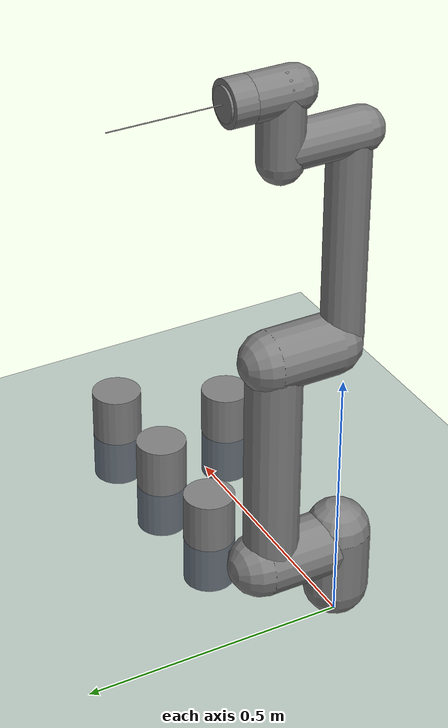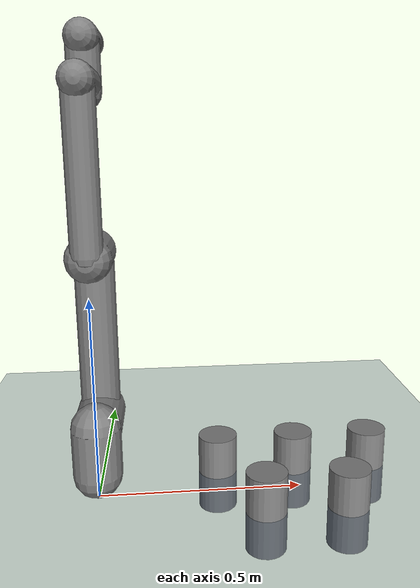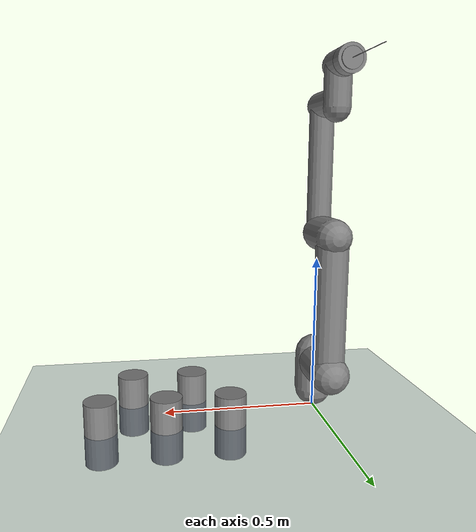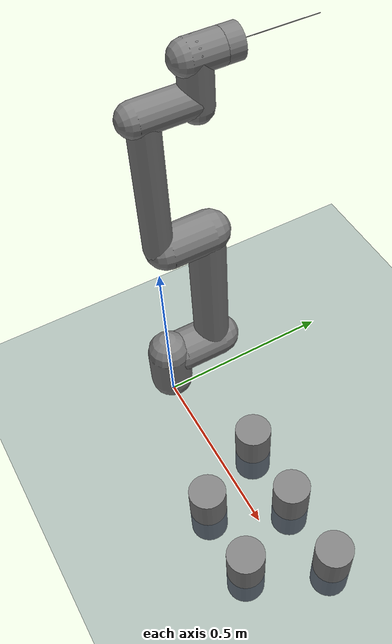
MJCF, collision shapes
<mujoco model="ur5e scene">

  <include file="ur5e.xml"/>

  <statistic center="0.3 0 0.4" extent="0.8"/>

  <visual>
    <headlight diffuse="0.6 0.6 0.6" ambient="0.1 0.1 0.1" specular="0 0 0"/>
  </visual>

  <asset>
    <texture type="skybox" builtin="gradient" rgb1="0.3 0.5 0.7" rgb2="0 0 0" width="512" height="3072"/>
    <texture type="2d" name="groundplane" builtin="checker" mark="edge" rgb1="0.2 0.3 0.4" rgb2="0.1 0.2 0.3"
      markrgb="0.8 0.8 0.8" width="300" height="300"/>
    <material name="groundplane" texture="groundplane" texuniform="true" texrepeat="5 5" reflectance="0.2"/>
  </asset>

  <worldbody>
    <light pos="0 0 1.5" dir="0 0 -1" directional="true"/>
    <geom name="floor" size="1 1 0.05" type="plane" material="groundplane"/>
    <body name="object1" pos="0 0 0">
      <geom type="cylinder" pos="0.3 0.1 0" size="0.05 0.1"/>
      <geom type="cylinder" pos="0.4 -0.1 0" size="0.05 0.1"/>
      <geom type="cylinder" pos="0.5 0.1 0" size="0.05 0.1"/>
      <geom type="cylinder" pos="0.6 -0.1 0" size="0.05 0.1"/>
      <geom type="cylinder" pos="0.7 0.1 0" size="0.05 0.1"/>
    </body>
  </worldbody>

</mujoco>

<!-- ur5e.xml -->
<mujoco model="ur5e">
  <compiler angle="radian" meshdir="assets"/>

  <default>
    <default class="ur5e">
      <material specular="0.5" shininess="0.25"/>
      <joint axis="0 1 0" range="-6.28319 6.28319" armature="0.1"/>
      <general gaintype="fixed" biastype="affine" ctrlrange="-6.2831 6.2831" gainprm="2000" biasprm="0 -2000 -400"
        forcerange="-150 150"/>
      <default class="size3">
        <default class="size3_limited">
          <joint range="-3.1415 3.1415"/>
          <general ctrlrange="-3.1415 3.1415"/>
        </default>
      </default>
      <default class="size1">
        <general gainprm="500" biasprm="0 -500 -100" forcerange="-28 28"/>
      </default>
      <default class="visual">
        <geom type="mesh" contype="0" conaffinity="0" group="2"/>
      </default>
      <default class="collision">
        <geom type="capsule" group="3"/>
        <default class="eef_collision">
          <geom type="cylinder"/>
        </default>
      </default>
      <site size="0.001" rgba="0.5 0.5 0.5 0.3" group="4"/>
    </default>
  </default>

  <asset>
    <material class="ur5e" name="black" rgba="0.033 0.033 0.033 1"/>
    <material class="ur5e" name="jointgray" rgba="0.278 0.278 0.278 1"/>
    <material class="ur5e" name="linkgray" rgba="0.82 0.82 0.82 1"/>
    <material class="ur5e" name="urblue" rgba="0.49 0.678 0.8 1"/>

    <mesh file="base_0.stl"/>
    <mesh file="base_1.stl"/>
    <mesh file="shoulder_0.stl"/>
    <mesh file="shoulder_1.stl"/>
    <mesh file="shoulder_2.stl"/>
    <mesh file="upperarm_0.stl"/>
    <mesh file="upperarm_1.stl"/>
    <mesh file="upperarm_2.stl"/>
    <mesh file="upperarm_3.stl"/>
    <mesh file="forearm_0.stl"/>
    <mesh file="forearm_1.stl"/>
    <mesh file="forearm_2.stl"/>
    <mesh file="forearm_3.stl"/>
    <mesh file="wrist1_0.stl"/>
    <mesh file="wrist1_1.stl"/>
    <mesh file="wrist1_2.stl"/>
    <mesh file="wrist2_0.stl"/>
    <mesh file="wrist2_1.stl"/>
    <mesh file="wrist2_2.stl"/>
    <mesh file="wrist3.stl"/>
  </asset>

  <worldbody>
    <light name="spotlight" mode="targetbodycom" target="wrist_2_link" pos="0 -1 2"/>
    <body name="base" quat="1 0 0 0" childclass="ur5e">
      <inertial mass="4.0" pos="0 0 0" diaginertia="0.00443333156 0.00443333156 0.0072"/>
      <geom mesh="base_0" material="black" class="visual"/>
      <geom mesh="base_1" material="jointgray" class="visual"/>
      <body name="shoulder_link" pos="0 0 0.163">
        <inertial mass="3.7" pos="0 0 0" diaginertia="0.0102675 0.0102675 0.00666"/>
        <joint name="shoulder_pan_joint" class="size3" axis="0 0 1"/>
        <geom mesh="shoulder_0" material="urblue" class="visual"/>
        <geom mesh="shoulder_1" material="black" class="visual"/>
        <geom mesh="shoulder_2" material="jointgray" class="visual"/>
        <geom class="collision" size="0.06 0.06" pos="0 0 -0.04"/>
        <body name="upper_arm_link" pos="0 0.138 0" quat="1 0 0 0">
          <inertial mass="8.393" pos="0 0 0.2125" diaginertia="0.133886 0.133886 0.0151074"/>
          <joint name="shoulder_lift_joint" class="size3"/>
          <geom mesh="upperarm_0" material="linkgray" class="visual"/>
          <geom mesh="upperarm_1" material="black" class="visual"/>
          <geom mesh="upperarm_2" material="jointgray" class="visual"/>
          <geom mesh="upperarm_3" material="urblue" class="visual"/>
          <geom class="collision" pos="0 -0.04 0" quat="1 1 0 0" size="0.06 0.06"/>
          <geom class="collision" size="0.05 0.2" pos="0 0 0.2"/>
          <body name="forearm_link" pos="0 -0.131 0.425">
            <inertial mass="2.275" pos="0 0 0.196" diaginertia="0.0311796 0.0311796 0.004095"/>
            <joint name="elbow_joint" class="size3_limited"/>
            <geom mesh="forearm_0" material="urblue" class="visual"/>
            <geom mesh="forearm_1" material="linkgray" class="visual"/>
            <geom mesh="forearm_2" material="black" class="visual"/>
            <geom mesh="forearm_3" material="jointgray" class="visual"/>
            <geom class="collision" pos="0 0.08 0" quat="1 1 0 0" size="0.055 0.06"/>
            <geom class="collision" size="0.038 0.19" pos="0 0 0.2"/>
            <body name="wrist_1_link" pos="0 0 0.392" quat="1 0 0 0">
              <inertial mass="1.219" pos="0 0.127 0" diaginertia="0.0025599 0.0025599 0.0021942"/>
              <joint name="wrist_1_joint" class="size1"/>
              <geom mesh="wrist1_0" material="black" class="visual"/>
              <geom mesh="wrist1_1" material="urblue" class="visual"/>
              <geom mesh="wrist1_2" material="jointgray" class="visual"/>
              <geom class="collision" pos="0 0.05 0" quat="1 1 0 0" size="0.04 0.07"/>
              <body name="wrist_2_link" pos="0 0.127 0">
                <inertial mass="1.219" pos="0 0 0.1" diaginertia="0.0025599 0.0021942 0.0025599"/>
                <joint name="wrist_2_joint" axis="0 0 1" class="size1"/>
                <geom mesh="wrist2_0" material="black" class="visual"/>
                <geom mesh="wrist2_1" material="urblue" class="visual"/>
                <geom mesh="wrist2_2" material="jointgray" class="visual"/>
                <geom class="collision" size="0.04 0.06" pos="0 0 0.04"/>
                <geom class="collision" pos="0 0.02 0.1" quat="1 1 0 0" size="0.04 0.04"/>
                <body name="wrist_3_link" pos="0 0 0.1">
                  <inertial mass="0.1889" pos="0 0.0771683 0" quat="1 0 0 1"
                    diaginertia="0.000132134 9.90863e-05 9.90863e-05"/>
                  <joint name="wrist_3_joint" class="size1"/>
                  <geom material="linkgray" mesh="wrist3" class="visual"/>
                  <geom class="eef_collision" pos="0 0.08 0" quat="1 1 0 0" size="0.04 0.02"/>
                  <site name="attachment_site" pos="0 0.1 0" quat="-1 1 0 0"/>

                  <body name="tool" pos="0 0.1 0" quat="1 -1 0 0">
                    <geom type="cylinder" pos="0 0 0.002" size="0.03 0.002" />
                    <geom type="cylinder" pos="0 0 0.1" size="0.001 0.1" />
                  </body>
                </body>
              </body>
            </body>
          </body>
        </body>
      </body>
    </body>
  </worldbody>

  <actuator>

    <motor name="shoulder_pan" joint="shoulder_pan_joint"/>
    <motor name="shoulder_lift" joint="shoulder_lift_joint"/>
    <motor name="elbow" joint="elbow_joint"/>
    <motor name="wrist_1" joint="wrist_1_joint"/>
    <motor name="wrist_2" joint="wrist_2_joint"/>
    <motor name="wrist_3" joint="wrist_3_joint"/>
  </actuator>

</mujoco>
